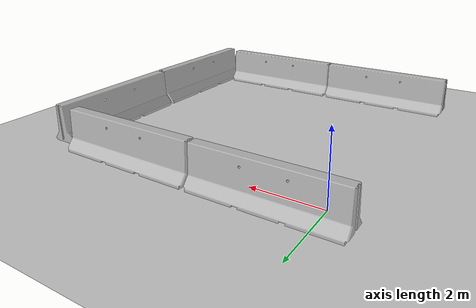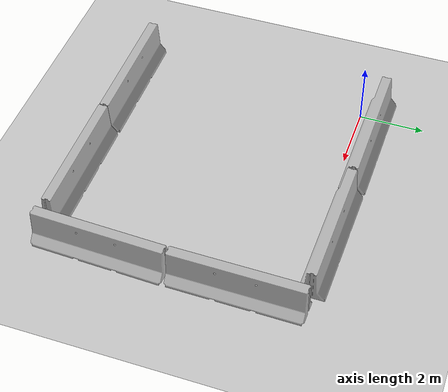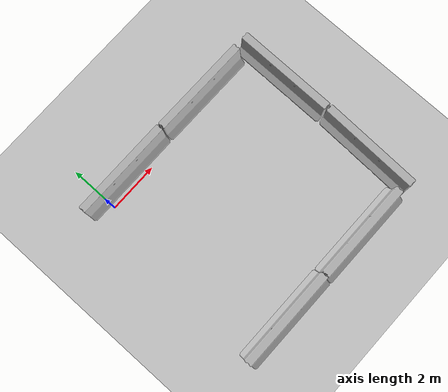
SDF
<sdf version="1.4">
 <world name="default">
  <light name="sun" type="directional">
   <pose>0 0 10 0 -0 0</pose>
   <diffuse>0.8 0.8 0.8 1</diffuse>
   <specular>0.2 0.2 0.2 1</specular>
   <attenuation>
    <range>1000</range>
    <constant>0.9</constant>
    <linear>0.01</linear>
    <quadratic>0.001</quadratic>
   </attenuation>
   <direction>-0.5 0.1 -0.9</direction>
  </light>
  <model name="ground_plane">
   <static>1</static>
   <link name="link">
    <collision name="collision">
     <geometry><plane><normal>0 0 1</normal><size>100 100</size></plane></geometry>
     <surface><friction><ode><mu>100</mu><mu2>50</mu2></ode></friction></surface>
    </collision>
    <visual name="visual">
     <cast_shadows>0</cast_shadows>
     <geometry><plane><normal>0 0 1</normal><size>100 100</size></plane></geometry>
     <material>
      <script><uri>file://media/materials/scripts/gazebo.material</uri><name>Gazebo/Grey</name></script>
     </material>
    </visual>
    <velocity_decay><linear>0</linear><angular>0</angular></velocity_decay>
   </link>
  </model>
  <physics type="ode">
   <max_step_size>0.01</max_step_size>
   <real_time_factor>1</real_time_factor>
   <real_time_update_rate>100</real_time_update_rate>
   <gravity>0 0 -9.8</gravity>
  </physics>
  <scene><ambient>0.4 0.4 0.4 1</ambient><background>0.7 0.7 0.7 1</background><shadows>1</shadows></scene>
  <spherical_coordinates>
   <surface_model>EARTH_WGS84</surface_model>
   <latitude_deg>0</latitude_deg>
   <longitude_deg>0</longitude_deg>
   <elevation>0</elevation>
   <heading_deg>0</heading_deg>
  </spherical_coordinates>
  <model name="jersey_barrier">
   <static>1</static>
   <link name="link">
    <visual name="visual">
     <geometry><mesh><uri>model://jersey_barrier/meshes/jersey_barrier.dae</uri></mesh></geometry>
    </visual>
    <collision name="upright">
     <pose>0 0 0.5715 0 -0 0</pose>
     <geometry><box><size>4.06542 0.3063 1.143</size></box></geometry>
    </collision>
    <collision name="base">
     <pose>0 0 0.032258 0 -0 0</pose>
     <geometry><box><size>4.06542 0.8107 0.064516</size></box></geometry>
    </collision>
    <collision name="base2">
     <pose>0 0 0.1 0 -0 0</pose>
     <geometry><box><size>4.06542 0.65 0.1</size></box></geometry>
    </collision>
    <collision name="base3">
     <pose>0 0 0.2 0 -0 0</pose>
     <geometry><box><size>4.06542 0.5 0.1</size></box></geometry>
    </collision>
    <collision name="left-angle">
     <pose>0 -0.224 0.2401 0.9 -0 0</pose>
     <geometry><box><size>4.06542 0.5 0.064516</size></box></geometry>
    </collision>
    <collision name="right-angle">
     <pose>0 0.224 0.2401 -0.9 0 0</pose>
     <geometry><box><size>4.06542 0.5 0.064516</size></box></geometry>
    </collision>
    <velocity_decay><linear>0</linear><angular>0</angular></velocity_decay>
   </link>
   <pose>5.30364 0.524415 0 0 -0 3.13356</pose>
  </model>
  <model name="jersey_barrier_0">
   <static>1</static>
   <link name="link">
    <visual name="visual">
     <geometry><mesh><uri>model://jersey_barrier/meshes/jersey_barrier.dae</uri></mesh></geometry>
    </visual>
    <collision name="upright">
     <pose>0 0 0.5715 0 -0 0</pose>
     <geometry><box><size>4.06542 0.3063 1.143</size></box></geometry>
    </collision>
    <collision name="base">
     <pose>0 0 0.032258 0 -0 0</pose>
     <geometry><box><size>4.06542 0.8107 0.064516</size></box></geometry>
    </collision>
    <collision name="base2">
     <pose>0 0 0.1 0 -0 0</pose>
     <geometry><box><size>4.06542 0.65 0.1</size></box></geometry>
    </collision>
    <collision name="base3">
     <pose>0 0 0.2 0 -0 0</pose>
     <geometry><box><size>4.06542 0.5 0.1</size></box></geometry>
    </collision>
    <collision name="left-angle">
     <pose>0 -0.224 0.2401 0.9 -0 0</pose>
     <geometry><box><size>4.06542 0.5 0.064516</size></box></geometry>
    </collision>
    <collision name="right-angle">
     <pose>0 0.224 0.2401 -0.9 0 0</pose>
     <geometry><box><size>4.06542 0.5 0.064516</size></box></geometry>
    </collision>
    <velocity_decay><linear>0</linear><angular>0</angular></velocity_decay>
   </link>
   <pose>7.82534 -1.42622 0 0 -0 1.56283</pose>
  </model>
  <model name="jersey_barrier_1">
   <static>1</static>
   <link name="link">
    <visual name="visual">
     <geometry><mesh><uri>model://jersey_barrier/meshes/jersey_barrier.dae</uri></mesh></geometry>
    </visual>
    <collision name="upright">
     <pose>0 0 0.5715 0 -0 0</pose>
     <geometry><box><size>4.06542 0.3063 1.143</size></box></geometry>
    </collision>
    <collision name="base">
     <pose>0 0 0.032258 0 -0 0</pose>
     <geometry><box><size>4.06542 0.8107 0.064516</size></box></geometry>
    </collision>
    <collision name="base2">
     <pose>0 0 0.1 0 -0 0</pose>
     <geometry><box><size>4.06542 0.65 0.1</size></box></geometry>
    </collision>
    <collision name="base3">
     <pose>0 0 0.2 0 -0 0</pose>
     <geometry><box><size>4.06542 0.5 0.1</size></box></geometry>
    </collision>
    <collision name="left-angle">
     <pose>0 -0.224 0.2401 0.9 -0 0</pose>
     <geometry><box><size>4.06542 0.5 0.064516</size></box></geometry>
    </collision>
    <collision name="right-angle">
     <pose>0 0.224 0.2401 -0.9 0 0</pose>
     <geometry><box><size>4.06542 0.5 0.064516</size></box></geometry>
    </collision>
    <velocity_decay><linear>0</linear><angular>0</angular></velocity_decay>
   </link>
   <pose>7.75548 -5.54261 0 0 -0 1.53543</pose>
  </model>
  <model name="jersey_barrier_2">
   <static>1</static>
   <link name="link">
    <visual name="visual">
     <geometry><mesh><uri>model://jersey_barrier/meshes/jersey_barrier.dae</uri></mesh></geometry>
    </visual>
    <collision name="upright">
     <pose>0 0 0.5715 0 -0 0</pose>
     <geometry><box><size>4.06542 0.3063 1.143</size></box></geometry>
    </collision>
    <collision name="base">
     <pose>0 0 0.032258 0 -0 0</pose>
     <geometry><box><size>4.06542 0.8107 0.064516</size></box></geometry>
    </collision>
    <collision name="base2">
     <pose>0 0 0.1 0 -0 0</pose>
     <geometry><box><size>4.06542 0.65 0.1</size></box></geometry>
    </collision>
    <collision name="base3">
     <pose>0 0 0.2 0 -0 0</pose>
     <geometry><box><size>4.06542 0.5 0.1</size></box></geometry>
    </collision>
    <collision name="left-angle">
     <pose>0 -0.224 0.2401 0.9 -0 0</pose>
     <geometry><box><size>4.06542 0.5 0.064516</size></box></geometry>
    </collision>
    <collision name="right-angle">
     <pose>0 0.224 0.2401 -0.9 0 0</pose>
     <geometry><box><size>4.06542 0.5 0.064516</size></box></geometry>
    </collision>
    <velocity_decay><linear>0</linear><angular>0</angular></velocity_decay>
   </link>
   <pose>5.20674 -7.34986 0 0 -0 0</pose>
  </model>
  <model name="jersey_barrier_3">
   <static>1</static>
   <link name="link">
    <visual name="visual">
     <geometry><mesh><uri>model://jersey_barrier/meshes/jersey_barrier.dae</uri></mesh></geometry>
    </visual>
    <collision name="upright">
     <pose>0 0 0.5715 0 -0 0</pose>
     <geometry><box><size>4.06542 0.3063 1.143</size></box></geometry>
    </collision>
    <collision name="base">
     <pose>0 0 0.032258 0 -0 0</pose>
     <geometry><box><size>4.06542 0.8107 0.064516</size></box></geometry>
    </collision>
    <collision name="base2">
     <pose>0 0 0.1 0 -0 0</pose>
     <geometry><box><size>4.06542 0.65 0.1</size></box></geometry>
    </collision>
    <collision name="base3">
     <pose>0 0 0.2 0 -0 0</pose>
     <geometry><box><size>4.06542 0.5 0.1</size></box></geometry>
    </collision>
    <collision name="left-angle">
     <pose>0 -0.224 0.2401 0.9 -0 0</pose>
     <geometry><box><size>4.06542 0.5 0.064516</size></box></geometry>
    </collision>
    <collision name="right-angle">
     <pose>0 0.224 0.2401 -0.9 0 0</pose>
     <geometry><box><size>4.06542 0.5 0.064516</size></box></geometry>
    </collision>
    <velocity_decay><linear>0</linear><angular>0</angular></velocity_decay>
   </link>
   <pose>1.12947 -7.3346 0 0 -0 0</pose>
  </model>
  <model name="jersey_barrier_4">
   <static>1</static>
   <link name="link">
    <visual name="visual">
     <geometry><mesh><uri>model://jersey_barrier/meshes/jersey_barrier.dae</uri></mesh></geometry>
    </visual>
    <collision name="upright">
     <pose>0 0 0.5715 0 -0 0</pose>
     <geometry><box><size>4.06542 0.3063 1.143</size></box></geometry>
    </collision>
    <collision name="base">
     <pose>0 0 0.032258 0 -0 0</pose>
     <geometry><box><size>4.06542 0.8107 0.064516</size></box></geometry>
    </collision>
    <collision name="base2">
     <pose>0 0 0.1 0 -0 0</pose>
     <geometry><box><size>4.06542 0.65 0.1</size></box></geometry>
    </collision>
    <collision name="base3">
     <pose>0 0 0.2 0 -0 0</pose>
     <geometry><box><size>4.06542 0.5 0.1</size></box></geometry>
    </collision>
    <collision name="left-angle">
     <pose>0 -0.224 0.2401 0.9 -0 0</pose>
     <geometry><box><size>4.06542 0.5 0.064516</size></box></geometry>
    </collision>
    <collision name="right-angle">
     <pose>0 0.224 0.2401 -0.9 0 0</pose>
     <geometry><box><size>4.06542 0.5 0.064516</size></box></geometry>
    </collision>
    <velocity_decay><linear>0</linear><angular>0</angular></velocity_decay>
   </link>
   <pose>1.19109 0.555326 0 0 -0 0</pose>
  </model>
 </world>
</sdf>
